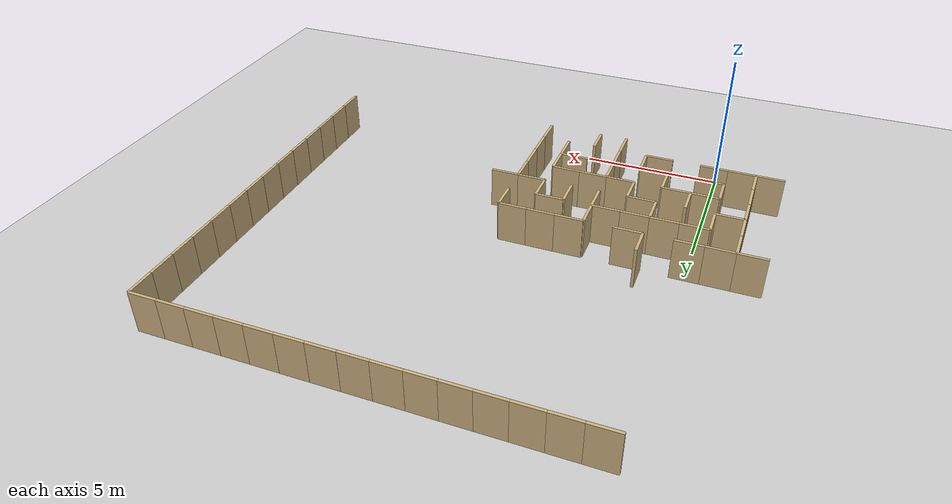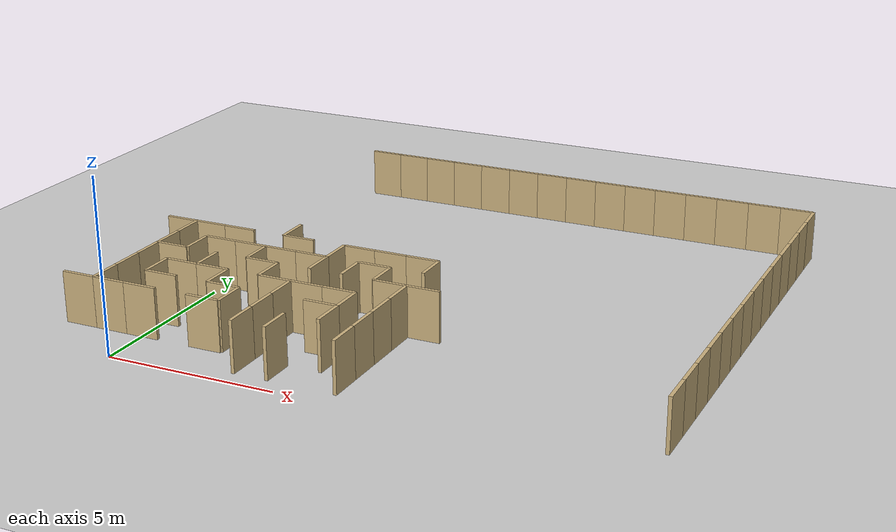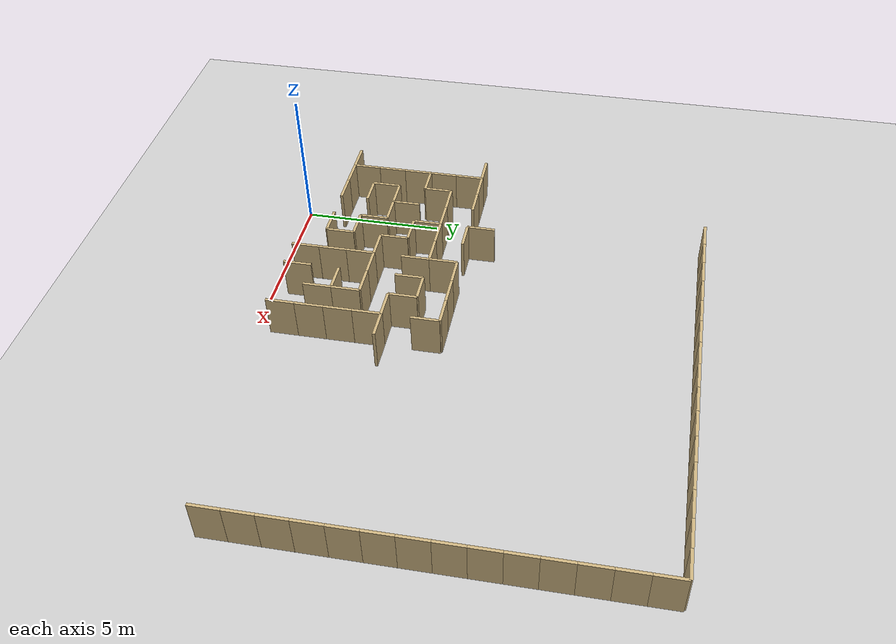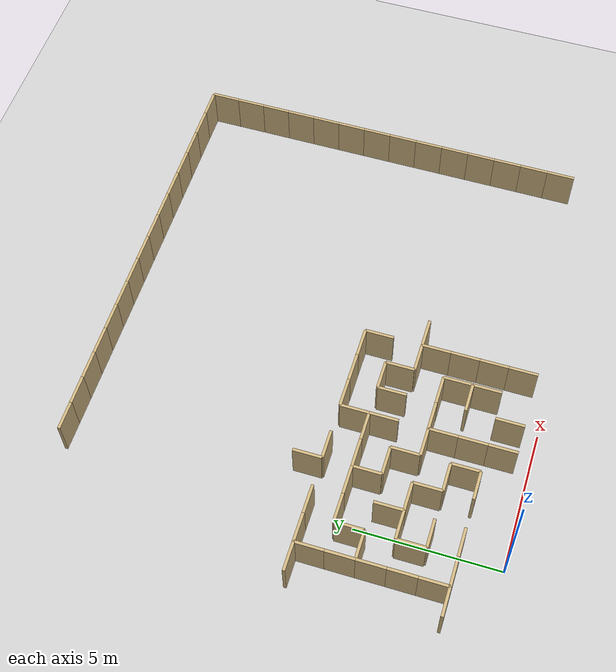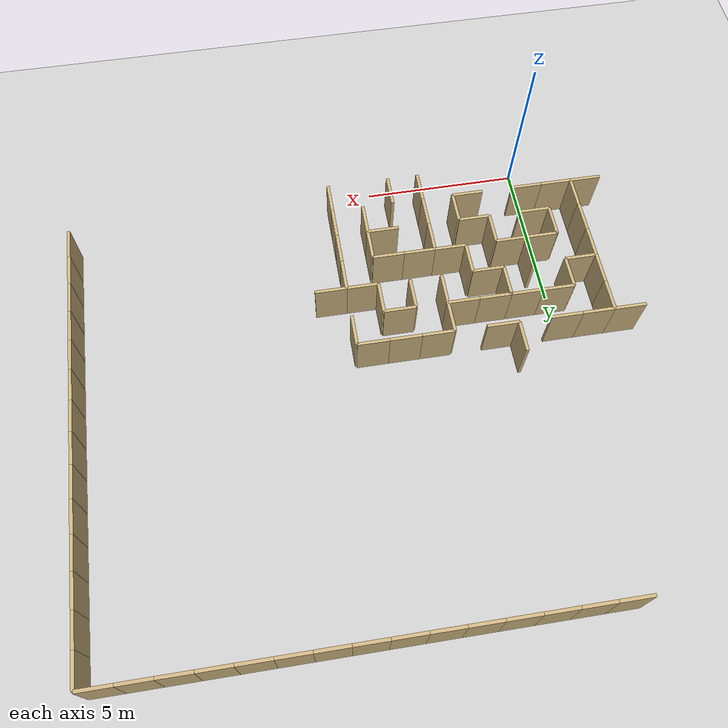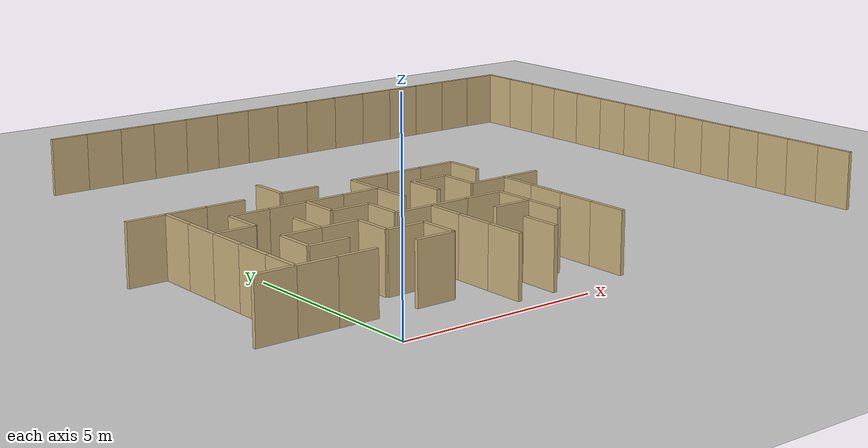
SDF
<sdf version="1.9">
 <world name="maze">
  <model name="ground_plane">
   <static>true</static>
   <link name="link">
    <collision name="collision">
     <geometry><plane><normal>0 0 1</normal><size>100 100</size></plane></geometry>
    </collision>
    <visual name="visual"><geometry><plane><normal>0 0 1</normal><size>100 100</size></plane></geometry></visual>
   </link>
  </model>
  <model name="wall_134">
   <static>true</static>
   <pose>3.5 1.0 0.75 0 0 0</pose>
   <link name="link">
    <collision name="collision"><geometry><box><size>0.1 1.0 1.5</size></box></geometry></collision>
    <visual name="visual">
     <geometry><box><size>0.1 1.0 1.5</size></box></geometry>
     <material>
      <ambient>0.8 0.7 0.5 1</ambient>
      <diffuse>0.8 0.7 0.5 1</diffuse>
      <specular>0.05 0.05 0.05 1</specular>
     </material>
    </visual>
   </link>
  </model>
  <model name="wall_136">
   <static>true</static>
   <pose>4.5 1.0 0.75 0 0 0</pose>
   <link name="link">
    <collision name="collision"><geometry><box><size>0.1 1.0 1.5</size></box></geometry></collision>
    <visual name="visual">
     <geometry><box><size>0.1 1.0 1.5</size></box></geometry>
     <material>
      <ambient>0.8 0.7 0.5 1</ambient>
      <diffuse>0.8 0.7 0.5 1</diffuse>
      <specular>0.05 0.05 0.05 1</specular>
     </material>
    </visual>
   </link>
  </model>
  <model name="wall_138">
   <static>true</static>
   <pose>6.5 1.0 0.75 0 0 0</pose>
   <link name="link">
    <collision name="collision"><geometry><box><size>0.1 1.0 1.5</size></box></geometry></collision>
    <visual name="visual">
     <geometry><box><size>0.1 1.0 1.5</size></box></geometry>
     <material>
      <ambient>0.8 0.7 0.5 1</ambient>
      <diffuse>0.8 0.7 0.5 1</diffuse>
      <specular>0.05 0.05 0.05 1</specular>
     </material>
    </visual>
   </link>
  </model>
  <model name="wall_144">
   <static>true</static>
   <pose>-2.0 1.5 0.75 0 0 0</pose>
   <link name="link">
    <collision name="collision"><geometry><box><size>1.0 0.1 1.5</size></box></geometry></collision>
    <visual name="visual">
     <geometry><box><size>1.0 0.1 1.5</size></box></geometry>
     <material>
      <ambient>0.8 0.7 0.5 1</ambient>
      <diffuse>0.8 0.7 0.5 1</diffuse>
      <specular>0.05 0.05 0.05 1</specular>
     </material>
    </visual>
   </link>
  </model>
  <model name="wall_146">
   <static>true</static>
   <pose>-1.0 1.5 0.75 0 0 0</pose>
   <link name="link">
    <collision name="collision"><geometry><box><size>1.0 0.1 1.5</size></box></geometry></collision>
    <visual name="visual">
     <geometry><box><size>1.0 0.1 1.5</size></box></geometry>
     <material>
      <ambient>0.8 0.7 0.5 1</ambient>
      <diffuse>0.8 0.7 0.5 1</diffuse>
      <specular>0.05 0.05 0.05 1</specular>
     </material>
    </visual>
   </link>
  </model>
  <model name="wall_147">
   <static>true</static>
   <pose>-1.5 2.0 0.75 0 0 0</pose>
   <link name="link">
    <collision name="collision"><geometry><box><size>0.1 1.0 1.5</size></box></geometry></collision>
    <visual name="visual">
     <geometry><box><size>0.1 1.0 1.5</size></box></geometry>
     <material>
      <ambient>0.8 0.7 0.5 1</ambient>
      <diffuse>0.8 0.7 0.5 1</diffuse>
      <specular>0.05 0.05 0.05 1</specular>
     </material>
    </visual>
   </link>
  </model>
  <model name="wall_148">
   <static>true</static>
   <pose>0.0 1.5 0.75 0 0 0</pose>
   <link name="link">
    <collision name="collision"><geometry><box><size>1.0 0.1 1.5</size></box></geometry></collision>
    <visual name="visual">
     <geometry><box><size>1.0 0.1 1.5</size></box></geometry>
     <material>
      <ambient>0.8 0.7 0.5 1</ambient>
      <diffuse>0.8 0.7 0.5 1</diffuse>
      <specular>0.05 0.05 0.05 1</specular>
     </material>
    </visual>
   </link>
  </model>
  <model name="wall_149">
   <static>true</static>
   <pose>2.0 1.5 0.75 0 0 0</pose>
   <link name="link">
    <collision name="collision"><geometry><box><size>1.0 0.1 1.5</size></box></geometry></collision>
    <visual name="visual">
     <geometry><box><size>1.0 0.1 1.5</size></box></geometry>
     <material>
      <ambient>0.8 0.7 0.5 1</ambient>
      <diffuse>0.8 0.7 0.5 1</diffuse>
      <specular>0.05 0.05 0.05 1</specular>
     </material>
    </visual>
   </link>
  </model>
  <model name="wall_150">
   <static>true</static>
   <pose>2.5 2.0 0.75 0 0 0</pose>
   <link name="link">
    <collision name="collision"><geometry><box><size>0.1 1.0 1.5</size></box></geometry></collision>
    <visual name="visual">
     <geometry><box><size>0.1 1.0 1.5</size></box></geometry>
     <material>
      <ambient>0.8 0.7 0.5 1</ambient>
      <diffuse>0.8 0.7 0.5 1</diffuse>
      <specular>0.05 0.05 0.05 1</specular>
     </material>
    </visual>
   </link>
  </model>
  <model name="wall_151">
   <static>true</static>
   <pose>3.5 2.0 0.75 0 0 0</pose>
   <link name="link">
    <collision name="collision"><geometry><box><size>0.1 1.0 1.5</size></box></geometry></collision>
    <visual name="visual">
     <geometry><box><size>0.1 1.0 1.5</size></box></geometry>
     <material>
      <ambient>0.8 0.7 0.5 1</ambient>
      <diffuse>0.8 0.7 0.5 1</diffuse>
      <specular>0.05 0.05 0.05 1</specular>
     </material>
    </visual>
   </link>
  </model>
  <model name="wall_152">
   <static>true</static>
   <pose>5.5 2.0 0.75 0 0 0</pose>
   <link name="link">
    <collision name="collision"><geometry><box><size>0.1 1.0 1.5</size></box></geometry></collision>
    <visual name="visual">
     <geometry><box><size>0.1 1.0 1.5</size></box></geometry>
     <material>
      <ambient>0.8 0.7 0.5 1</ambient>
      <diffuse>0.8 0.7 0.5 1</diffuse>
      <specular>0.05 0.05 0.05 1</specular>
     </material>
    </visual>
   </link>
  </model>
  <model name="wall_153">
   <static>true</static>
   <pose>6.5 2.0 0.75 0 0 0</pose>
   <link name="link">
    <collision name="collision"><geometry><box><size>0.1 1.0 1.5</size></box></geometry></collision>
    <visual name="visual">
     <geometry><box><size>0.1 1.0 1.5</size></box></geometry>
     <material>
      <ambient>0.8 0.7 0.5 1</ambient>
      <diffuse>0.8 0.7 0.5 1</diffuse>
      <specular>0.05 0.05 0.05 1</specular>
     </material>
    </visual>
   </link>
  </model>
  <model name="wall_159">
   <static>true</static>
   <pose>-1.5 3.0 0.75 0 0 0</pose>
   <link name="link">
    <collision name="collision"><geometry><box><size>0.1 1.0 1.5</size></box></geometry></collision>
    <visual name="visual">
     <geometry><box><size>0.1 1.0 1.5</size></box></geometry>
     <material>
      <ambient>0.8 0.7 0.5 1</ambient>
      <diffuse>0.8 0.7 0.5 1</diffuse>
      <specular>0.05 0.05 0.05 1</specular>
     </material>
    </visual>
   </link>
  </model>
  <model name="wall_160">
   <static>true</static>
   <pose>0.0 2.5 0.75 0 0 0</pose>
   <link name="link">
    <collision name="collision"><geometry><box><size>1.0 0.1 1.5</size></box></geometry></collision>
    <visual name="visual">
     <geometry><box><size>1.0 0.1 1.5</size></box></geometry>
     <material>
      <ambient>0.8 0.7 0.5 1</ambient>
      <diffuse>0.8 0.7 0.5 1</diffuse>
      <specular>0.05 0.05 0.05 1</specular>
     </material>
    </visual>
   </link>
  </model>
  <model name="wall_161">
   <static>true</static>
   <pose>-0.5 3.0 0.75 0 0 0</pose>
   <link name="link">
    <collision name="collision"><geometry><box><size>0.1 1.0 1.5</size></box></geometry></collision>
    <visual name="visual">
     <geometry><box><size>0.1 1.0 1.5</size></box></geometry>
     <material>
      <ambient>0.8 0.7 0.5 1</ambient>
      <diffuse>0.8 0.7 0.5 1</diffuse>
      <specular>0.05 0.05 0.05 1</specular>
     </material>
    </visual>
   </link>
  </model>
  <model name="wall_162">
   <static>true</static>
   <pose>2.0 2.5 0.75 0 0 0</pose>
   <link name="link">
    <collision name="collision"><geometry><box><size>1.0 0.1 1.5</size></box></geometry></collision>
    <visual name="visual">
     <geometry><box><size>1.0 0.1 1.5</size></box></geometry>
     <material>
      <ambient>0.8 0.7 0.5 1</ambient>
      <diffuse>0.8 0.7 0.5 1</diffuse>
      <specular>0.05 0.05 0.05 1</specular>
     </material>
    </visual>
   </link>
  </model>
  <model name="wall_163">
   <static>true</static>
   <pose>1.5 3.0 0.75 0 0 0</pose>
   <link name="link">
    <collision name="collision"><geometry><box><size>0.1 1.0 1.5</size></box></geometry></collision>
    <visual name="visual">
     <geometry><box><size>0.1 1.0 1.5</size></box></geometry>
     <material>
      <ambient>0.8 0.7 0.5 1</ambient>
      <diffuse>0.8 0.7 0.5 1</diffuse>
      <specular>0.05 0.05 0.05 1</specular>
     </material>
    </visual>
   </link>
  </model>
  <model name="wall_164">
   <static>true</static>
   <pose>3.5 3.0 0.75 0 0 0</pose>
   <link name="link">
    <collision name="collision"><geometry><box><size>0.1 1.0 1.5</size></box></geometry></collision>
    <visual name="visual">
     <geometry><box><size>0.1 1.0 1.5</size></box></geometry>
     <material>
      <ambient>0.8 0.7 0.5 1</ambient>
      <diffuse>0.8 0.7 0.5 1</diffuse>
      <specular>0.05 0.05 0.05 1</specular>
     </material>
    </visual>
   </link>
  </model>
  <model name="wall_165">
   <static>true</static>
   <pose>5.0 2.5 0.75 0 0 0</pose>
   <link name="link">
    <collision name="collision"><geometry><box><size>1.0 0.1 1.5</size></box></geometry></collision>
    <visual name="visual">
     <geometry><box><size>1.0 0.1 1.5</size></box></geometry>
     <material>
      <ambient>0.8 0.7 0.5 1</ambient>
      <diffuse>0.8 0.7 0.5 1</diffuse>
      <specular>0.05 0.05 0.05 1</specular>
     </material>
    </visual>
   </link>
  </model>
  <model name="wall_166">
   <static>true</static>
   <pose>5.5 3.0 0.75 0 0 0</pose>
   <link name="link">
    <collision name="collision"><geometry><box><size>0.1 1.0 1.5</size></box></geometry></collision>
    <visual name="visual">
     <geometry><box><size>0.1 1.0 1.5</size></box></geometry>
     <material>
      <ambient>0.8 0.7 0.5 1</ambient>
      <diffuse>0.8 0.7 0.5 1</diffuse>
      <specular>0.05 0.05 0.05 1</specular>
     </material>
    </visual>
   </link>
  </model>
  <model name="wall_167">
   <static>true</static>
   <pose>6.5 3.0 0.75 0 0 0</pose>
   <link name="link">
    <collision name="collision"><geometry><box><size>0.1 1.0 1.5</size></box></geometry></collision>
    <visual name="visual">
     <geometry><box><size>0.1 1.0 1.5</size></box></geometry>
     <material>
      <ambient>0.8 0.7 0.5 1</ambient>
      <diffuse>0.8 0.7 0.5 1</diffuse>
      <specular>0.05 0.05 0.05 1</specular>
     </material>
    </visual>
   </link>
  </model>
  <model name="wall_174">
   <static>true</static>
   <pose>-1.5 4.0 0.75 0 0 0</pose>
   <link name="link">
    <collision name="collision"><geometry><box><size>0.1 1.0 1.5</size></box></geometry></collision>
    <visual name="visual">
     <geometry><box><size>0.1 1.0 1.5</size></box></geometry>
     <material>
      <ambient>0.8 0.7 0.5 1</ambient>
      <diffuse>0.8 0.7 0.5 1</diffuse>
      <specular>0.05 0.05 0.05 1</specular>
     </material>
    </visual>
   </link>
  </model>
  <model name="wall_175">
   <static>true</static>
   <pose>0.0 3.5 0.75 0 0 0</pose>
   <link name="link">
    <collision name="collision"><geometry><box><size>1.0 0.1 1.5</size></box></geometry></collision>
    <visual name="visual">
     <geometry><box><size>1.0 0.1 1.5</size></box></geometry>
     <material>
      <ambient>0.8 0.7 0.5 1</ambient>
      <diffuse>0.8 0.7 0.5 1</diffuse>
      <specular>0.05 0.05 0.05 1</specular>
     </material>
    </visual>
   </link>
  </model>
  <model name="wall_176">
   <static>true</static>
   <pose>1.0 3.5 0.75 0 0 0</pose>
   <link name="link">
    <collision name="collision"><geometry><box><size>1.0 0.1 1.5</size></box></geometry></collision>
    <visual name="visual">
     <geometry><box><size>1.0 0.1 1.5</size></box></geometry>
     <material>
      <ambient>0.8 0.7 0.5 1</ambient>
      <diffuse>0.8 0.7 0.5 1</diffuse>
      <specular>0.05 0.05 0.05 1</specular>
     </material>
    </visual>
   </link>
  </model>
  <model name="wall_177">
   <static>true</static>
   <pose>0.5 4.0 0.75 0 0 0</pose>
   <link name="link">
    <collision name="collision"><geometry><box><size>0.1 1.0 1.5</size></box></geometry></collision>
    <visual name="visual">
     <geometry><box><size>0.1 1.0 1.5</size></box></geometry>
     <material>
      <ambient>0.8 0.7 0.5 1</ambient>
      <diffuse>0.8 0.7 0.5 1</diffuse>
      <specular>0.05 0.05 0.05 1</specular>
     </material>
    </visual>
   </link>
  </model>
  <model name="wall_178">
   <static>true</static>
   <pose>3.0 3.5 0.75 0 0 0</pose>
   <link name="link">
    <collision name="collision"><geometry><box><size>1.0 0.1 1.5</size></box></geometry></collision>
    <visual name="visual">
     <geometry><box><size>1.0 0.1 1.5</size></box></geometry>
     <material>
      <ambient>0.8 0.7 0.5 1</ambient>
      <diffuse>0.8 0.7 0.5 1</diffuse>
      <specular>0.05 0.05 0.05 1</specular>
     </material>
    </visual>
   </link>
  </model>
  <model name="wall_179">
   <static>true</static>
   <pose>2.5 4.0 0.75 0 0 0</pose>
   <link name="link">
    <collision name="collision"><geometry><box><size>0.1 1.0 1.5</size></box></geometry></collision>
    <visual name="visual">
     <geometry><box><size>0.1 1.0 1.5</size></box></geometry>
     <material>
      <ambient>0.8 0.7 0.5 1</ambient>
      <diffuse>0.8 0.7 0.5 1</diffuse>
      <specular>0.05 0.05 0.05 1</specular>
     </material>
    </visual>
   </link>
  </model>
  <model name="wall_180">
   <static>true</static>
   <pose>4.0 3.5 0.75 0 0 0</pose>
   <link name="link">
    <collision name="collision"><geometry><box><size>1.0 0.1 1.5</size></box></geometry></collision>
    <visual name="visual">
     <geometry><box><size>1.0 0.1 1.5</size></box></geometry>
     <material>
      <ambient>0.8 0.7 0.5 1</ambient>
      <diffuse>0.8 0.7 0.5 1</diffuse>
      <specular>0.05 0.05 0.05 1</specular>
     </material>
    </visual>
   </link>
  </model>
  <model name="wall_181">
   <static>true</static>
   <pose>5.0 3.5 0.75 0 0 0</pose>
   <link name="link">
    <collision name="collision"><geometry><box><size>1.0 0.1 1.5</size></box></geometry></collision>
    <visual name="visual">
     <geometry><box><size>1.0 0.1 1.5</size></box></geometry>
     <material>
      <ambient>0.8 0.7 0.5 1</ambient>
      <diffuse>0.8 0.7 0.5 1</diffuse>
      <specular>0.05 0.05 0.05 1</specular>
     </material>
    </visual>
   </link>
  </model>
  <model name="wall_182">
   <static>true</static>
   <pose>6.5 4.0 0.75 0 0 0</pose>
   <link name="link">
    <collision name="collision"><geometry><box><size>0.1 1.0 1.5</size></box></geometry></collision>
    <visual name="visual">
     <geometry><box><size>0.1 1.0 1.5</size></box></geometry>
     <material>
      <ambient>0.8 0.7 0.5 1</ambient>
      <diffuse>0.8 0.7 0.5 1</diffuse>
      <specular>0.05 0.05 0.05 1</specular>
     </material>
    </visual>
   </link>
  </model>
  <model name="wall_189">
   <static>true</static>
   <pose>-1.0 4.5 0.75 0 0 0</pose>
   <link name="link">
    <collision name="collision"><geometry><box><size>1.0 0.1 1.5</size></box></geometry></collision>
    <visual name="visual">
     <geometry><box><size>1.0 0.1 1.5</size></box></geometry>
     <material>
      <ambient>0.8 0.7 0.5 1</ambient>
      <diffuse>0.8 0.7 0.5 1</diffuse>
      <specular>0.05 0.05 0.05 1</specular>
     </material>
    </visual>
   </link>
  </model>
  <model name="wall_190">
   <static>true</static>
   <pose>-1.5 5.0 0.75 0 0 0</pose>
   <link name="link">
    <collision name="collision"><geometry><box><size>0.1 1.0 1.5</size></box></geometry></collision>
    <visual name="visual">
     <geometry><box><size>0.1 1.0 1.5</size></box></geometry>
     <material>
      <ambient>0.8 0.7 0.5 1</ambient>
      <diffuse>0.8 0.7 0.5 1</diffuse>
      <specular>0.05 0.05 0.05 1</specular>
     </material>
    </visual>
   </link>
  </model>
  <model name="wall_191">
   <static>true</static>
   <pose>-0.5 5.0 0.75 0 0 0</pose>
   <link name="link">
    <collision name="collision"><geometry><box><size>0.1 1.0 1.5</size></box></geometry></collision>
    <visual name="visual">
     <geometry><box><size>0.1 1.0 1.5</size></box></geometry>
     <material>
      <ambient>0.8 0.7 0.5 1</ambient>
      <diffuse>0.8 0.7 0.5 1</diffuse>
      <specular>0.05 0.05 0.05 1</specular>
     </material>
    </visual>
   </link>
  </model>
  <model name="wall_192">
   <static>true</static>
   <pose>2.0 4.5 0.75 0 0 0</pose>
   <link name="link">
    <collision name="collision"><geometry><box><size>1.0 0.1 1.5</size></box></geometry></collision>
    <visual name="visual">
     <geometry><box><size>1.0 0.1 1.5</size></box></geometry>
     <material>
      <ambient>0.8 0.7 0.5 1</ambient>
      <diffuse>0.8 0.7 0.5 1</diffuse>
      <specular>0.05 0.05 0.05 1</specular>
     </material>
    </visual>
   </link>
  </model>
  <model name="wall_193">
   <static>true</static>
   <pose>1.5 5.0 0.75 0 0 0</pose>
   <link name="link">
    <collision name="collision"><geometry><box><size>0.1 1.0 1.5</size></box></geometry></collision>
    <visual name="visual">
     <geometry><box><size>0.1 1.0 1.5</size></box></geometry>
     <material>
      <ambient>0.8 0.7 0.5 1</ambient>
      <diffuse>0.8 0.7 0.5 1</diffuse>
      <specular>0.05 0.05 0.05 1</specular>
     </material>
    </visual>
   </link>
  </model>
  <model name="wall_194">
   <static>true</static>
   <pose>3.5 5.0 0.75 0 0 0</pose>
   <link name="link">
    <collision name="collision"><geometry><box><size>0.1 1.0 1.5</size></box></geometry></collision>
    <visual name="visual">
     <geometry><box><size>0.1 1.0 1.5</size></box></geometry>
     <material>
      <ambient>0.8 0.7 0.5 1</ambient>
      <diffuse>0.8 0.7 0.5 1</diffuse>
      <specular>0.05 0.05 0.05 1</specular>
     </material>
    </visual>
   </link>
  </model>
  <model name="wall_195">
   <static>true</static>
   <pose>4.5 5.0 0.75 0 0 0</pose>
   <link name="link">
    <collision name="collision"><geometry><box><size>0.1 1.0 1.5</size></box></geometry></collision>
    <visual name="visual">
     <geometry><box><size>0.1 1.0 1.5</size></box></geometry>
     <material>
      <ambient>0.8 0.7 0.5 1</ambient>
      <diffuse>0.8 0.7 0.5 1</diffuse>
      <specular>0.05 0.05 0.05 1</specular>
     </material>
    </visual>
   </link>
  </model>
  <model name="wall_196">
   <static>true</static>
   <pose>6.0 4.5 0.75 0 0 0</pose>
   <link name="link">
    <collision name="collision"><geometry><box><size>1.0 0.1 1.5</size></box></geometry></collision>
    <visual name="visual">
     <geometry><box><size>1.0 0.1 1.5</size></box></geometry>
     <material>
      <ambient>0.8 0.7 0.5 1</ambient>
      <diffuse>0.8 0.7 0.5 1</diffuse>
      <specular>0.05 0.05 0.05 1</specular>
     </material>
    </visual>
   </link>
  </model>
  <model name="wall_197">
   <static>true</static>
   <pose>5.5 5.0 0.75 0 0 0</pose>
   <link name="link">
    <collision name="collision"><geometry><box><size>0.1 1.0 1.5</size></box></geometry></collision>
    <visual name="visual">
     <geometry><box><size>0.1 1.0 1.5</size></box></geometry>
     <material>
      <ambient>0.8 0.7 0.5 1</ambient>
      <diffuse>0.8 0.7 0.5 1</diffuse>
      <specular>0.05 0.05 0.05 1</specular>
     </material>
    </visual>
   </link>
  </model>
  <model name="wall_198">
   <static>true</static>
   <pose>7.0 4.5 0.75 0 0 0</pose>
   <link name="link">
    <collision name="collision"><geometry><box><size>1.0 0.1 1.5</size></box></geometry></collision>
    <visual name="visual">
     <geometry><box><size>1.0 0.1 1.5</size></box></geometry>
     <material>
      <ambient>0.8 0.7 0.5 1</ambient>
      <diffuse>0.8 0.7 0.5 1</diffuse>
      <specular>0.05 0.05 0.05 1</specular>
     </material>
    </visual>
   </link>
  </model>
  <model name="wall_205">
   <static>true</static>
   <pose>-1.5 6.0 0.75 0 0 0</pose>
   <link name="link">
    <collision name="collision"><geometry><box><size>0.1 1.0 1.5</size></box></geometry></collision>
    <visual name="visual">
     <geometry><box><size>0.1 1.0 1.5</size></box></geometry>
     <material>
      <ambient>0.8 0.7 0.5 1</ambient>
      <diffuse>0.8 0.7 0.5 1</diffuse>
      <specular>0.05 0.05 0.05 1</specular>
     </material>
    </visual>
   </link>
  </model>
  <model name="wall_206">
   <static>true</static>
   <pose>0.0 5.5 0.75 0 0 0</pose>
   <link name="link">
    <collision name="collision"><geometry><box><size>1.0 0.1 1.5</size></box></geometry></collision>
    <visual name="visual">
     <geometry><box><size>1.0 0.1 1.5</size></box></geometry>
     <material>
      <ambient>0.8 0.7 0.5 1</ambient>
      <diffuse>0.8 0.7 0.5 1</diffuse>
      <specular>0.05 0.05 0.05 1</specular>
     </material>
    </visual>
   </link>
  </model>
  <model name="wall_207">
   <static>true</static>
   <pose>1.0 5.5 0.75 0 0 0</pose>
   <link name="link">
    <collision name="collision"><geometry><box><size>1.0 0.1 1.5</size></box></geometry></collision>
    <visual name="visual">
     <geometry><box><size>1.0 0.1 1.5</size></box></geometry>
     <material>
      <ambient>0.8 0.7 0.5 1</ambient>
      <diffuse>0.8 0.7 0.5 1</diffuse>
      <specular>0.05 0.05 0.05 1</specular>
     </material>
    </visual>
   </link>
  </model>
  <model name="wall_208">
   <static>true</static>
   <pose>2.0 5.5 0.75 0 0 0</pose>
   <link name="link">
    <collision name="collision"><geometry><box><size>1.0 0.1 1.5</size></box></geometry></collision>
    <visual name="visual">
     <geometry><box><size>1.0 0.1 1.5</size></box></geometry>
     <material>
      <ambient>0.8 0.7 0.5 1</ambient>
      <diffuse>0.8 0.7 0.5 1</diffuse>
      <specular>0.05 0.05 0.05 1</specular>
     </material>
    </visual>
   </link>
  </model>
  <model name="wall_209">
   <static>true</static>
   <pose>3.0 5.5 0.75 0 0 0</pose>
   <link name="link">
    <collision name="collision"><geometry><box><size>1.0 0.1 1.5</size></box></geometry></collision>
    <visual name="visual">
     <geometry><box><size>1.0 0.1 1.5</size></box></geometry>
     <material>
      <ambient>0.8 0.7 0.5 1</ambient>
      <diffuse>0.8 0.7 0.5 1</diffuse>
      <specular>0.05 0.05 0.05 1</specular>
     </material>
    </visual>
   </link>
  </model>
  <model name="wall_210">
   <static>true</static>
   <pose>3.5 6.0 0.75 0 0 0</pose>
   <link name="link">
    <collision name="collision"><geometry><box><size>0.1 1.0 1.5</size></box></geometry></collision>
    <visual name="visual">
     <geometry><box><size>0.1 1.0 1.5</size></box></geometry>
     <material>
      <ambient>0.8 0.7 0.5 1</ambient>
      <diffuse>0.8 0.7 0.5 1</diffuse>
      <specular>0.05 0.05 0.05 1</specular>
     </material>
    </visual>
   </link>
  </model>
  <model name="wall_211">
   <static>true</static>
   <pose>5.0 5.5 0.75 0 0 0</pose>
   <link name="link">
    <collision name="collision"><geometry><box><size>1.0 0.1 1.5</size></box></geometry></collision>
    <visual name="visual">
     <geometry><box><size>1.0 0.1 1.5</size></box></geometry>
     <material>
      <ambient>0.8 0.7 0.5 1</ambient>
      <diffuse>0.8 0.7 0.5 1</diffuse>
      <specular>0.05 0.05 0.05 1</specular>
     </material>
    </visual>
   </link>
  </model>
  <model name="wall_212">
   <static>true</static>
   <pose>6.5 6.0 0.75 0 0 0</pose>
   <link name="link">
    <collision name="collision"><geometry><box><size>0.1 1.0 1.5</size></box></geometry></collision>
    <visual name="visual">
     <geometry><box><size>0.1 1.0 1.5</size></box></geometry>
     <material>
      <ambient>0.8 0.7 0.5 1</ambient>
      <diffuse>0.8 0.7 0.5 1</diffuse>
      <specular>0.05 0.05 0.05 1</specular>
     </material>
    </visual>
   </link>
  </model>
  <model name="wall_217">
   <static>true</static>
   <pose>-2.0 6.5 0.75 0 0 0</pose>
   <link name="link">
    <collision name="collision"><geometry><box><size>1.0 0.1 1.5</size></box></geometry></collision>
    <visual name="visual">
     <geometry><box><size>1.0 0.1 1.5</size></box></geometry>
     <material>
      <ambient>0.8 0.7 0.5 1</ambient>
      <diffuse>0.8 0.7 0.5 1</diffuse>
      <specular>0.05 0.05 0.05 1</specular>
     </material>
    </visual>
   </link>
  </model>
  <model name="wall_218">
   <static>true</static>
   <pose>-1.0 6.5 0.75 0 0 0</pose>
   <link name="link">
    <collision name="collision"><geometry><box><size>1.0 0.1 1.5</size></box></geometry></collision>
    <visual name="visual">
     <geometry><box><size>1.0 0.1 1.5</size></box></geometry>
     <material>
      <ambient>0.8 0.7 0.5 1</ambient>
      <diffuse>0.8 0.7 0.5 1</diffuse>
      <specular>0.05 0.05 0.05 1</specular>
     </material>
    </visual>
   </link>
  </model>
  <model name="wall_219">
   <static>true</static>
   <pose>0.0 6.5 0.75 0 0 0</pose>
   <link name="link">
    <collision name="collision"><geometry><box><size>1.0 0.1 1.5</size></box></geometry></collision>
    <visual name="visual">
     <geometry><box><size>1.0 0.1 1.5</size></box></geometry>
     <material>
      <ambient>0.8 0.7 0.5 1</ambient>
      <diffuse>0.8 0.7 0.5 1</diffuse>
      <specular>0.05 0.05 0.05 1</specular>
     </material>
    </visual>
   </link>
  </model>
  <model name="wall_220">
   <static>true</static>
   <pose>2.0 6.5 0.75 0 0 0</pose>
   <link name="link">
    <collision name="collision"><geometry><box><size>1.0 0.1 1.5</size></box></geometry></collision>
    <visual name="visual">
     <geometry><box><size>1.0 0.1 1.5</size></box></geometry>
     <material>
      <ambient>0.8 0.7 0.5 1</ambient>
      <diffuse>0.8 0.7 0.5 1</diffuse>
      <specular>0.05 0.05 0.05 1</specular>
     </material>
    </visual>
   </link>
  </model>
  <model name="wall_221">
   <static>true</static>
   <pose>1.5 7.0 0.75 0 0 0</pose>
   <link name="link">
    <collision name="collision"><geometry><box><size>0.1 1.0 1.5</size></box></geometry></collision>
    <visual name="visual">
     <geometry><box><size>0.1 1.0 1.5</size></box></geometry>
     <material>
      <ambient>0.8 0.7 0.5 1</ambient>
      <diffuse>0.8 0.7 0.5 1</diffuse>
      <specular>0.05 0.05 0.05 1</specular>
     </material>
    </visual>
   </link>
  </model>
  <model name="wall_222">
   <static>true</static>
   <pose>4.0 6.5 0.75 0 0 0</pose>
   <link name="link">
    <collision name="collision"><geometry><box><size>1.0 0.1 1.5</size></box></geometry></collision>
    <visual name="visual">
     <geometry><box><size>1.0 0.1 1.5</size></box></geometry>
     <material>
      <ambient>0.8 0.7 0.5 1</ambient>
      <diffuse>0.8 0.7 0.5 1</diffuse>
      <specular>0.05 0.05 0.05 1</specular>
     </material>
    </visual>
   </link>
  </model>
  <model name="wall_223">
   <static>true</static>
   <pose>5.0 6.5 0.75 0 0 0</pose>
   <link name="link">
    <collision name="collision"><geometry><box><size>1.0 0.1 1.5</size></box></geometry></collision>
    <visual name="visual">
     <geometry><box><size>1.0 0.1 1.5</size></box></geometry>
     <material>
      <ambient>0.8 0.7 0.5 1</ambient>
      <diffuse>0.8 0.7 0.5 1</diffuse>
      <specular>0.05 0.05 0.05 1</specular>
     </material>
    </visual>
   </link>
  </model>
  <model name="wall_224">
   <static>true</static>
   <pose>6.0 6.5 0.75 0 0 0</pose>
   <link name="link">
    <collision name="collision"><geometry><box><size>1.0 0.1 1.5</size></box></geometry></collision>
    <visual name="visual">
     <geometry><box><size>1.0 0.1 1.5</size></box></geometry>
     <material>
      <ambient>0.8 0.7 0.5 1</ambient>
      <diffuse>0.8 0.7 0.5 1</diffuse>
      <specular>0.05 0.05 0.05 1</specular>
     </material>
    </visual>
   </link>
  </model>
  <model name="wall_226">
   <static>true</static>
   <pose>15 1.5 0.75 0 0 0</pose>
   <link name="link">
    <collision name="collision"><geometry><box><size>0.1 1.0 1.5</size></box></geometry></collision>
    <visual name="visual">
     <geometry><box><size>0.1 1.0 1.5</size></box></geometry>
     <material>
      <ambient>0.8 0.7 0.5 1</ambient>
      <diffuse>0.8 0.7 0.5 1</diffuse>
      <specular>0.05 0.05 0.05 1</specular>
     </material>
    </visual>
   </link>
  </model>
  <model name="wall_227">
   <static>true</static>
   <pose>15 2.5 0.75 0 0 0</pose>
   <link name="link">
    <collision name="collision"><geometry><box><size>0.1 1.0 1.5</size></box></geometry></collision>
    <visual name="visual">
     <geometry><box><size>0.1 1.0 1.5</size></box></geometry>
     <material>
      <ambient>0.8 0.7 0.5 1</ambient>
      <diffuse>0.8 0.7 0.5 1</diffuse>
      <specular>0.05 0.05 0.05 1</specular>
     </material>
    </visual>
   </link>
  </model>
  <model name="wall_228">
   <static>true</static>
   <pose>15 3.5 0.75 0 0 0</pose>
   <link name="link">
    <collision name="collision"><geometry><box><size>0.1 1.0 1.5</size></box></geometry></collision>
    <visual name="visual">
     <geometry><box><size>0.1 1.0 1.5</size></box></geometry>
     <material>
      <ambient>0.8 0.7 0.5 1</ambient>
      <diffuse>0.8 0.7 0.5 1</diffuse>
      <specular>0.05 0.05 0.05 1</specular>
     </material>
    </visual>
   </link>
  </model>
  <model name="wall_229">
   <static>true</static>
   <pose>15 4.5 0.75 0 0 0</pose>
   <link name="link">
    <collision name="collision"><geometry><box><size>0.1 1.0 1.5</size></box></geometry></collision>
    <visual name="visual">
     <geometry><box><size>0.1 1.0 1.5</size></box></geometry>
     <material>
      <ambient>0.8 0.7 0.5 1</ambient>
      <diffuse>0.8 0.7 0.5 1</diffuse>
      <specular>0.05 0.05 0.05 1</specular>
     </material>
    </visual>
   </link>
  </model>
  <model name="wall_230">
   <static>true</static>
   <pose>15 5.5 0.75 0 0 0</pose>
   <link name="link">
    <collision name="collision"><geometry><box><size>0.1 1.0 1.5</size></box></geometry></collision>
    <visual name="visual">
     <geometry><box><size>0.1 1.0 1.5</size></box></geometry>
     <material>
      <ambient>0.8 0.7 0.5 1</ambient>
      <diffuse>0.8 0.7 0.5 1</diffuse>
      <specular>0.05 0.05 0.05 1</specular>
     </material>
    </visual>
   </link>
  </model>
  <model name="wall_231">
   <static>true</static>
   <pose>15 6.5 0.75 0 0 0</pose>
   <link name="link">
    <collision name="collision"><geometry><box><size>0.1 1.0 1.5</size></box></geometry></collision>
    <visual name="visual">
     <geometry><box><size>0.1 1.0 1.5</size></box></geometry>
     <material>
      <ambient>0.8 0.7 0.5 1</ambient>
      <diffuse>0.8 0.7 0.5 1</diffuse>
      <specular>0.05 0.05 0.05 1</specular>
     </material>
    </visual>
   </link>
  </model>
  <model name="wall_232">
   <static>true</static>
   <pose>15 7.5 0.75 0 0 0</pose>
   <link name="link">
    <collision name="collision"><geometry><box><size>0.1 1.0 1.5</size></box></geometry></collision>
    <visual name="visual">
     <geometry><box><size>0.1 1.0 1.5</size></box></geometry>
     <material>
      <ambient>0.8 0.7 0.5 1</ambient>
      <diffuse>0.8 0.7 0.5 1</diffuse>
      <specular>0.05 0.05 0.05 1</specular>
     </material>
    </visual>
   </link>
  </model>
  <model name="wall_233">
   <static>true</static>
   <pose>15 8.5 0.75 0 0 0</pose>
   <link name="link">
    <collision name="collision"><geometry><box><size>0.1 1.0 1.5</size></box></geometry></collision>
    <visual name="visual">
     <geometry><box><size>0.1 1.0 1.5</size></box></geometry>
     <material>
      <ambient>0.8 0.7 0.5 1</ambient>
      <diffuse>0.8 0.7 0.5 1</diffuse>
      <specular>0.05 0.05 0.05 1</specular>
     </material>
    </visual>
   </link>
  </model>
  <model name="wall_234">
   <static>true</static>
   <pose>15 9.5 0.75 0 0 0</pose>
   <link name="link">
    <collision name="collision"><geometry><box><size>0.1 1.0 1.5</size></box></geometry></collision>
    <visual name="visual">
     <geometry><box><size>0.1 1.0 1.5</size></box></geometry>
     <material>
      <ambient>0.8 0.7 0.5 1</ambient>
      <diffuse>0.8 0.7 0.5 1</diffuse>
      <specular>0.05 0.05 0.05 1</specular>
     </material>
    </visual>
   </link>
  </model>
  <model name="wall_235">
   <static>true</static>
   <pose>15 10.5 0.75 0 0 0</pose>
   <link name="link">
    <collision name="collision"><geometry><box><size>0.1 1.0 1.5</size></box></geometry></collision>
    <visual name="visual">
     <geometry><box><size>0.1 1.0 1.5</size></box></geometry>
     <material>
      <ambient>0.8 0.7 0.5 1</ambient>
      <diffuse>0.8 0.7 0.5 1</diffuse>
      <specular>0.05 0.05 0.05 1</specular>
     </material>
    </visual>
   </link>
  </model>
  <model name="wall_236">
   <static>true</static>
   <pose>15 11.5 0.75 0 0 0</pose>
   <link name="link">
    <collision name="collision"><geometry><box><size>0.1 1.0 1.5</size></box></geometry></collision>
    <visual name="visual">
     <geometry><box><size>0.1 1.0 1.5</size></box></geometry>
     <material>
      <ambient>0.8 0.7 0.5 1</ambient>
      <diffuse>0.8 0.7 0.5 1</diffuse>
      <specular>0.05 0.05 0.05 1</specular>
     </material>
    </visual>
   </link>
  </model>
  <model name="wall_237">
   <static>true</static>
   <pose>15 12.5 0.75 0 0 0</pose>
   <link name="link">
    <collision name="collision"><geometry><box><size>0.1 1.0 1.5</size></box></geometry></collision>
    <visual name="visual">
     <geometry><box><size>0.1 1.0 1.5</size></box></geometry>
     <material>
      <ambient>0.8 0.7 0.5 1</ambient>
      <diffuse>0.8 0.7 0.5 1</diffuse>
      <specular>0.05 0.05 0.05 1</specular>
     </material>
    </visual>
   </link>
  </model>
  <model name="wall_238">
   <static>true</static>
   <pose>15 13.5 0.75 0 0 0</pose>
   <link name="link">
    <collision name="collision"><geometry><box><size>0.1 1.0 1.5</size></box></geometry></collision>
    <visual name="visual">
     <geometry><box><size>0.1 1.0 1.5</size></box></geometry>
     <material>
      <ambient>0.8 0.7 0.5 1</ambient>
      <diffuse>0.8 0.7 0.5 1</diffuse>
      <specular>0.05 0.05 0.05 1</specular>
     </material>
    </visual>
   </link>
  </model>
  <model name="wall_239">
   <static>true</static>
   <pose>15 14.5 0.75 0 0 0</pose>
   <link name="link">
    <collision name="collision"><geometry><box><size>0.1 1.0 1.5</size></box></geometry></collision>
    <visual name="visual">
     <geometry><box><size>0.1 1.0 1.5</size></box></geometry>
     <material>
      <ambient>0.8 0.7 0.5 1</ambient>
      <diffuse>0.8 0.7 0.5 1</diffuse>
      <specular>0.05 0.05 0.05 1</specular>
     </material>
    </visual>
   </link>
  </model>
  <model name="wall_240">
   <static>true</static>
   <pose>0.5 15 0.75 0 0 0</pose>
   <link name="link">
    <collision name="collision"><geometry><box><size>1.0 0.1 1.5</size></box></geometry></collision>
    <visual name="visual">
     <geometry><box><size>1.0 0.1 1.5</size></box></geometry>
     <material>
      <ambient>0.8 0.7 0.5 1</ambient>
      <diffuse>0.8 0.7 0.5 1</diffuse>
      <specular>0.05 0.05 0.05 1</specular>
     </material>
    </visual>
   </link>
  </model>
  <model name="wall_241">
   <static>true</static>
   <pose>1.5 15 0.75 0 0 0</pose>
   <link name="link">
    <collision name="collision"><geometry><box><size>1.0 0.1 1.5</size></box></geometry></collision>
    <visual name="visual">
     <geometry><box><size>1.0 0.1 1.5</size></box></geometry>
     <material>
      <ambient>0.8 0.7 0.5 1</ambient>
      <diffuse>0.8 0.7 0.5 1</diffuse>
      <specular>0.05 0.05 0.05 1</specular>
     </material>
    </visual>
   </link>
  </model>
  <model name="wall_242">
   <static>true</static>
   <pose>2.5 15 0.75 0 0 0</pose>
   <link name="link">
    <collision name="collision"><geometry><box><size>1.0 0.1 1.5</size></box></geometry></collision>
    <visual name="visual">
     <geometry><box><size>1.0 0.1 1.5</size></box></geometry>
     <material>
      <ambient>0.8 0.7 0.5 1</ambient>
      <diffuse>0.8 0.7 0.5 1</diffuse>
      <specular>0.05 0.05 0.05 1</specular>
     </material>
    </visual>
   </link>
  </model>
  <model name="wall_243">
   <static>true</static>
   <pose>3.5 15 0.75 0 0 0</pose>
   <link name="link">
    <collision name="collision"><geometry><box><size>1.0 0.1 1.5</size></box></geometry></collision>
    <visual name="visual">
     <geometry><box><size>1.0 0.1 1.5</size></box></geometry>
     <material>
      <ambient>0.8 0.7 0.5 1</ambient>
      <diffuse>0.8 0.7 0.5 1</diffuse>
      <specular>0.05 0.05 0.05 1</specular>
     </material>
    </visual>
   </link>
  </model>
  <model name="wall_244">
   <static>true</static>
   <pose>4.5 15 0.75 0 0 0</pose>
   <link name="link">
    <collision name="collision"><geometry><box><size>1.0 0.1 1.5</size></box></geometry></collision>
    <visual name="visual">
     <geometry><box><size>1.0 0.1 1.5</size></box></geometry>
     <material>
      <ambient>0.8 0.7 0.5 1</ambient>
      <diffuse>0.8 0.7 0.5 1</diffuse>
      <specular>0.05 0.05 0.05 1</specular>
     </material>
    </visual>
   </link>
  </model>
  <model name="wall_245">
   <static>true</static>
   <pose>5.5 15 0.75 0 0 0</pose>
   <link name="link">
    <collision name="collision"><geometry><box><size>1.0 0.1 1.5</size></box></geometry></collision>
    <visual name="visual">
     <geometry><box><size>1.0 0.1 1.5</size></box></geometry>
     <material>
      <ambient>0.8 0.7 0.5 1</ambient>
      <diffuse>0.8 0.7 0.5 1</diffuse>
      <specular>0.05 0.05 0.05 1</specular>
     </material>
    </visual>
   </link>
  </model>
  <model name="wall_246">
   <static>true</static>
   <pose>6.5 15 0.75 0 0 0</pose>
   <link name="link">
    <collision name="collision"><geometry><box><size>1.0 0.1 1.5</size></box></geometry></collision>
    <visual name="visual">
     <geometry><box><size>1.0 0.1 1.5</size></box></geometry>
     <material>
      <ambient>0.8 0.7 0.5 1</ambient>
      <diffuse>0.8 0.7 0.5 1</diffuse>
      <specular>0.05 0.05 0.05 1</specular>
     </material>
    </visual>
   </link>
  </model>
  <model name="wall_247">
   <static>true</static>
   <pose>7.5 15 0.75 0 0 0</pose>
   <link name="link">
    <collision name="collision"><geometry><box><size>1.0 0.1 1.5</size></box></geometry></collision>
    <visual name="visual">
     <geometry><box><size>1.0 0.1 1.5</size></box></geometry>
     <material>
      <ambient>0.8 0.7 0.5 1</ambient>
      <diffuse>0.8 0.7 0.5 1</diffuse>
      <specular>0.05 0.05 0.05 1</specular>
     </material>
    </visual>
   </link>
  </model>
  <model name="wall_248">
   <static>true</static>
   <pose>8.5 15 0.75 0 0 0</pose>
   <link name="link">
    <collision name="collision"><geometry><box><size>1.0 0.1 1.5</size></box></geometry></collision>
    <visual name="visual">
     <geometry><box><size>1.0 0.1 1.5</size></box></geometry>
     <material>
      <ambient>0.8 0.7 0.5 1</ambient>
      <diffuse>0.8 0.7 0.5 1</diffuse>
      <specular>0.05 0.05 0.05 1</specular>
     </material>
    </visual>
   </link>
  </model>
  <model name="wall_249">
   <static>true</static>
   <pose>9.5 15 0.75 0 0 0</pose>
   <link name="link">
    <collision name="collision"><geometry><box><size>1.0 0.1 1.5</size></box></geometry></collision>
    <visual name="visual">
     <geometry><box><size>1.0 0.1 1.5</size></box></geometry>
     <material>
      <ambient>0.8 0.7 0.5 1</ambient>
      <diffuse>0.8 0.7 0.5 1</diffuse>
      <specular>0.05 0.05 0.05 1</specular>
     </material>
    </visual>
   </link>
  </model>
  <model name="wall_250">
   <static>true</static>
   <pose>10.5 15 0.75 0 0 0</pose>
   <link name="link">
    <collision name="collision"><geometry><box><size>1.0 0.1 1.5</size></box></geometry></collision>
    <visual name="visual">
     <geometry><box><size>1.0 0.1 1.5</size></box></geometry>
     <material>
      <ambient>0.8 0.7 0.5 1</ambient>
      <diffuse>0.8 0.7 0.5 1</diffuse>
      <specular>0.05 0.05 0.05 1</specular>
     </material>
    </visual>
   </link>
  </model>
  <model name="wall_251">
   <static>true</static>
   <pose>11.5 15 0.75 0 0 0</pose>
   <link name="link">
    <collision name="collision"><geometry><box><size>1.0 0.1 1.5</size></box></geometry></collision>
    <visual name="visual">
     <geometry><box><size>1.0 0.1 1.5</size></box></geometry>
     <material>
      <ambient>0.8 0.7 0.5 1</ambient>
      <diffuse>0.8 0.7 0.5 1</diffuse>
      <specular>0.05 0.05 0.05 1</specular>
     </material>
    </visual>
   </link>
  </model>
  <model name="wall_252">
   <static>true</static>
   <pose>12.5 15 0.75 0 0 0</pose>
   <link name="link">
    <collision name="collision"><geometry><box><size>1.0 0.1 1.5</size></box></geometry></collision>
    <visual name="visual">
     <geometry><box><size>1.0 0.1 1.5</size></box></geometry>
     <material>
      <ambient>0.8 0.7 0.5 1</ambient>
      <diffuse>0.8 0.7 0.5 1</diffuse>
      <specular>0.05 0.05 0.05 1</specular>
     </material>
    </visual>
   </link>
  </model>
  <model name="wall_253">
   <static>true</static>
   <pose>13.5 15 0.75 0 0 0</pose>
   <link name="link">
    <collision name="collision"><geometry><box><size>1.0 0.1 1.5</size></box></geometry></collision>
    <visual name="visual">
     <geometry><box><size>1.0 0.1 1.5</size></box></geometry>
     <material>
      <ambient>0.8 0.7 0.5 1</ambient>
      <diffuse>0.8 0.7 0.5 1</diffuse>
      <specular>0.05 0.05 0.05 1</specular>
     </material>
    </visual>
   </link>
  </model>
  <model name="wall_254">
   <static>true</static>
   <pose>14.5 15 0.75 0 0 0</pose>
   <link name="link">
    <collision name="collision"><geometry><box><size>1.0 0.1 1.5</size></box></geometry></collision>
    <visual name="visual">
     <geometry><box><size>1.0 0.1 1.5</size></box></geometry>
     <material>
      <ambient>0.8 0.7 0.5 1</ambient>
      <diffuse>0.8 0.7 0.5 1</diffuse>
      <specular>0.05 0.05 0.05 1</specular>
     </material>
    </visual>
   </link>
  </model>
 </world>
</sdf>
